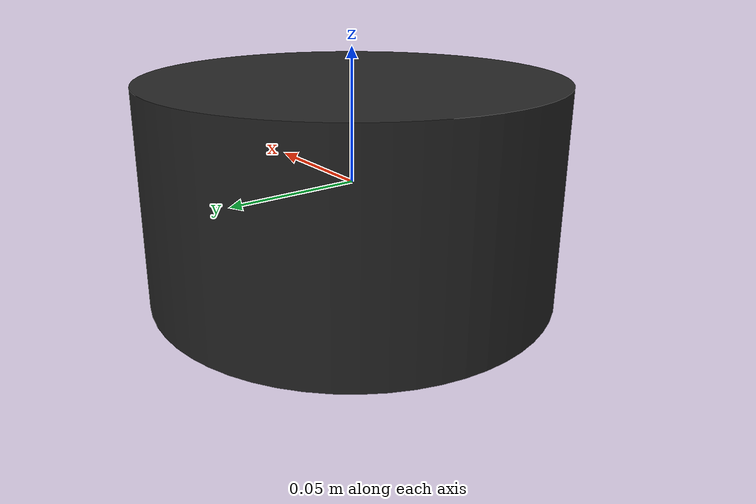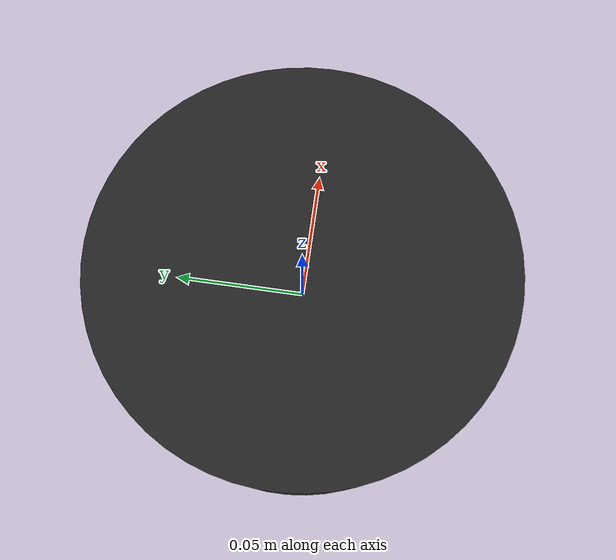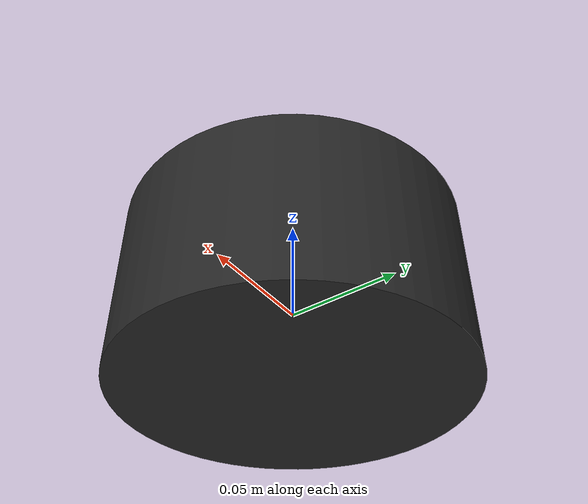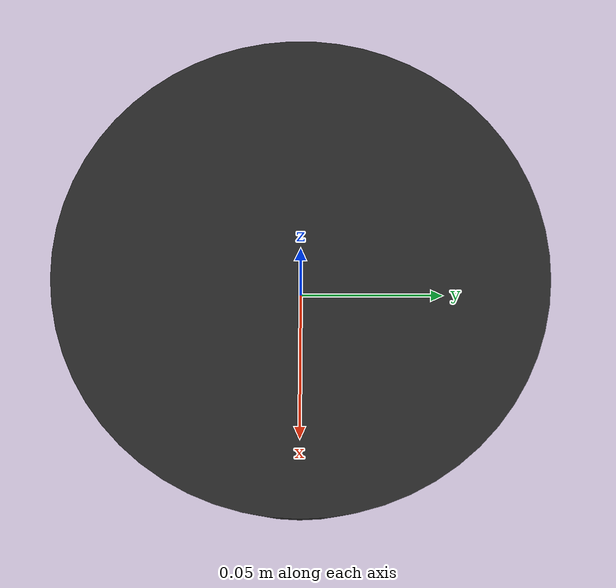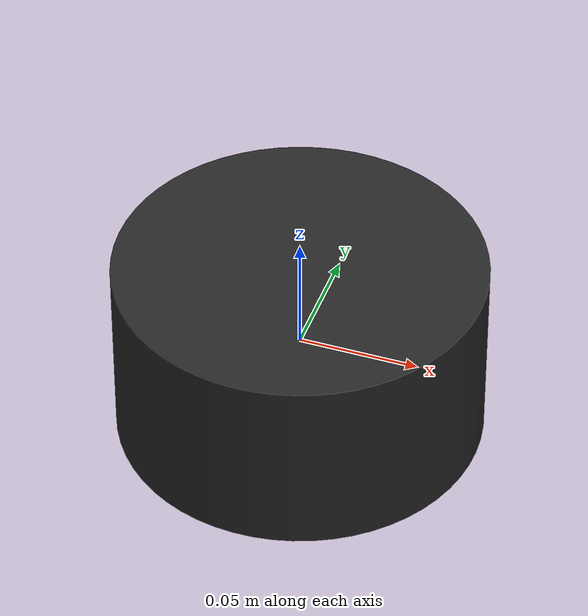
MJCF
<mujoco model="wheel">
  <default>
    <default class="visual">
      <geom group="2" type="mesh" contype="0" conaffinity="0"/>
    </default>
    <default class="collision">
      <geom group="3" type="mesh"/>
    </default>
  </default>
  <asset>
    <material name="mtl_wheel" specular="0.20000000000000004" shininess="1.0" rgba="0.14901961 0.14901961 0.14901961 1.0"/>
    <mesh file="wheel.obj"/>
  </asset>
  <worldbody>
    <body name="wheel">
      <geom material="mtl_wheel" mesh="wheel" class="visual"/>
      <geom mesh="wheel" class="collision"/>
    </body>
  </worldbody>
</mujoco>
